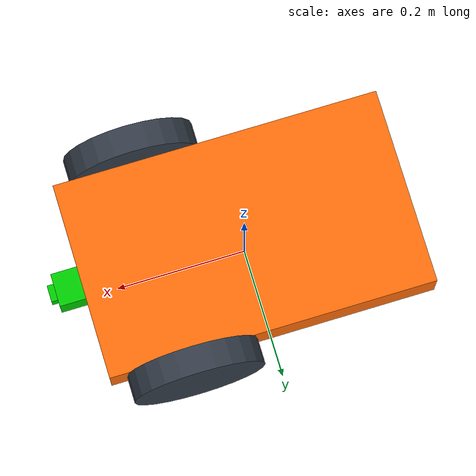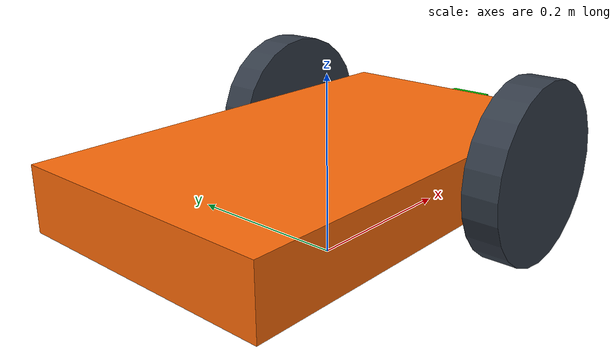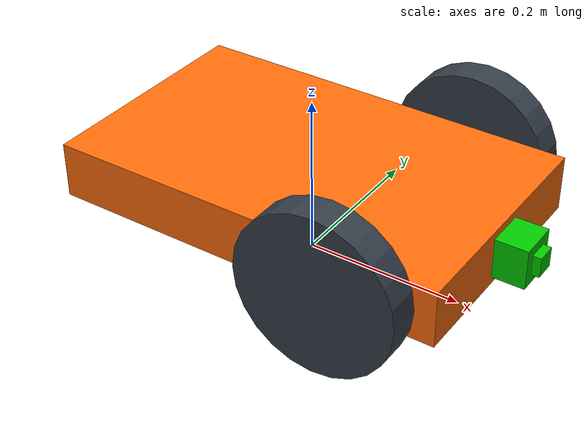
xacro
<?xml version="1.0" ?>

<robot name="robot" xmlns:xacro="http://www.ros.org/wiki/xacro">
  <!-- meta properties -->
  <xacro:property name="package_name" value="robot_description"/>
  <xacro:property name="robot_name" value="simple_robot"/>

  <!-- robot description properties-->
  <xacro:property name="base_length" value="0.5"/>
  <xacro:property name="base_width" value="0.3"/>
  <xacro:property name="base_height" value="0.07"/>

  <xacro:property name="laser_sensor_size" value="0.05"/>

  <xacro:property name="wheel_diam" value="0.2"/>
  <xacro:property name="wheel_width" value="0.04"/>

  <xacro:property name="collision_inflation" value="1.1"/>

  <!-- includes -->
  <xacro:include filename="$(find ${package_name})/urdf/${robot_name}.gazebo"/>
  <xacro:include filename="$(find ${package_name})/urdf/include/materials.xacro"/>
  <xacro:include filename="$(find ${package_name})/urdf/include/parts.xacro"/>

  <!-- calculated properties -->
  <xacro:property name="wheel_x_pos" value="${base_length/4}"/>
  <xacro:property name="wheel_y_pos" value="${base_width/2+wheel_width/2}"/>
  <xacro:property name="wheel_z_pos" value="0"/>

  <!-- footprint link -->
  <link name="link_footprint"/>
  <joint name="joint_footprint" type="fixed">
    <origin xyz="0 0 ${wheel_diam/2}"/>
    <parent link="link_footprint"/>
    <child link="link_chassis"/>
  </joint>

  <!-- description -->
  <xacro:base link_name="link_chassis" m="5"
    length="${base_length}" width="${base_width}" height="${base_height}"
    collision_inflation="${collision_inflation}" />

  <xacro:caster prefix="rear" base_link="link_chassis"
    m="0.01" r="${wheel_diam/4}"
    x_pos="${-base_length/4}" y_pos="0" z_pos="${-wheel_diam/4}" />

  <xacro:wheel side="right" base_link="link_chassis"
    m="0.2" r="${wheel_diam/2}" l="${wheel_width}"
    x_pos="${wheel_x_pos}" y_pos="${-wheel_y_pos}" z_pos="${wheel_z_pos}" />

  <xacro:wheel side="left" base_link="link_chassis"
    m="0.2" r="${wheel_diam/2}" l="${wheel_width}"
    x_pos="${wheel_x_pos}" y_pos="${wheel_y_pos}" z_pos="${wheel_z_pos}" />

  <xacro:laser name="laser" base_link="link_chassis" m="1e-5" size="${laser_sensor_size}"
    x_pos="${base_length/2 + laser_sensor_size/2}" y_pos="0" z_pos="0"/>
</robot>

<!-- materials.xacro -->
<robot xmlns:xacro="http://www.ros.org/wiki/xacro">
  <material name="black">
    <color rgba="0.0 0.0 0.0 1.0" />
  </material>
  <material name="blue">
    <color rgba="0.203125 0.23828125 0.28515625 1.0" />
  </material>
  <material name="green">
    <color rgba="0.0 0.8 0.0 1.0" />
  </material>
  <material name="grey">
    <color rgba="0.2 0.2 0.2 1.0" />
  </material>
  <material name="orange">
    <color rgba="1.0 0.423529411765 0.0392156862745 1.0" />
  </material>
  <material name="brown">
    <color rgba="0.870588235294 0.811764705882 0.764705882353 1.0" />
  </material>
  <material name="red">
    <color rgba="0.80078125 0.12890625 0.1328125 1.0" />
  </material>
  <material name="white">
    <color rgba="1.0 1.0 1.0 1.0" />
  </material>
</robot>

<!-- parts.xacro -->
<robot xmlns:xacro="http://www.ros.org/wiki/xacro">

  <xacro:include filename="$(find ${package_name})/urdf/include/inertia.xacro"/>

  <xacro:macro name="wheel" params="side base_link m r l x_pos y_pos z_pos">
    <link name="link_${side}_wheel">

      <visual>
        <origin xyz="0 0 0" rpy="${pi/2} 0 0" />
        <geometry>
          <cylinder radius="${r}" length="${l}" />
        </geometry>
        <material name="blue" />
      </visual>

      <collision>
        <origin xyz="0 0 0" rpy="${pi/2} 0 0" />
        <geometry>
          <cylinder radius="${r}" length="${l}" />
        </geometry>
      </collision>

      <xacro:cylinder_inertia m="${m}" r="${r}" l="${l}" o_xyz="0.0 0.0 0.0" o_rpy="${pi/2} 0.0 0.0" />
    </link>

    <joint name="joint_${side}_wheel" type="continuous">
      <axis xyz="0 1 0" rpy="0 0 0" />
      <parent link="${base_link}" />
      <child link="link_${side}_wheel" />
      <origin xyz="${x_pos} ${y_pos} ${z_pos}" rpy="0 0 0" />
      <limit effort="10000" velocity="1000"/>
      <joint_properties damping="1.0" friction="1.0"/>
    </joint>

    <!-- This block provides the simulator (Gazebo) with information on a few additional
      physical properties. See http://gazebosim.org/tutorials/?tut=ros_urdf for more-->
    <gazebo reference="link_${side}_wheel">
      <mu1 value="200.0" />
      <mu2 value="200.0" />
      <kp value="10000000.0" />
      <kd value="1.0" />
      <material>Gazebo/Blue</material>
    </gazebo>
  </xacro:macro>

  <xacro:macro name="caster" params="prefix base_link m r x_pos y_pos z_pos">
    <link name="link_${prefix}_caster">
      <collision name="link_${prefix}_caster_collision">
        <origin rpy=" 0 0 0" xyz="0 0 0"/>
        <geometry>
          <sphere radius="${r}"/>
        </geometry>
        <surface>
          <friction>
            <ode>
              <mu>0</mu>
              <mu2>0</mu2>
              <slip1>1.0</slip1>
              <slip2>1.0</slip2>
            </ode>
          </friction>
        </surface>
      </collision>

      <visual name="link_${prefix}_caster_visual">
        <origin rpy=" 0 0 0" xyz="0 0 0"/>
        <geometry>
          <sphere radius="${r}"/>
        </geometry>
        <material name="blue"/>
      </visual>

      <xacro:sphere_inertia m="${m}" r="${r}"/>
    </link>

    <joint name="joint_${prefix}_caster" type="fixed">
      <origin rpy="0 0 0" xyz="${x_pos} ${y_pos} ${z_pos}"/>
      <parent link="${base_link}"/>
      <child link="link_${prefix}_caster"/>
    </joint>
  </xacro:macro>

  <xacro:macro name="base" params="link_name m length width height collision_inflation">
    <link name="${link_name}">

      <collision name="${link_name}_collision">
          <geometry>
          <box size="${length*collision_inflation} ${width*collision_inflation} ${height*collision_inflation}"/>
        </geometry>
      </collision>

      <visual name="${link_name}_visual">
        <geometry>
          <box size="${length} ${width} ${height}"/>
        </geometry>
        <material name="orange"/>
      </visual>

      <xacro:box_inertia m="${m}" x="${length}" y="${width}" z="${height}"
        o_xyz="0 0 0" o_rpy="0 0 0"/>
    </link>
  </xacro:macro>

  <xacro:macro name="laser" params="name base_link m size x_pos y_pos z_pos r_rot:=0.0 p_rot:=0.0 y_rot:=0.0">
    <link name="link_${name}">
      <collision>
        <origin xyz="0 0 0" rpy="0 0 0"/>
        <geometry>
          <box size="${size} ${size} ${size}"/>
        </geometry>
      </collision>

      <visual>
        <origin xyz="${-size/10} 0 0" rpy="0 0 0"/>
        <geometry>
          <box size="${size*0.8} ${size} ${size}"/>
        </geometry>
        <material name="green"/>
      </visual>

      <visual>
        <origin xyz="${size*0.25} 0 0" rpy="0 0 0"/>
        <geometry>
          <box size="${size*0.5} ${size*0.5} ${size*0.5}"/>
        </geometry>
        <material name="green"/>
      </visual>

      <xacro:box_inertia m="${m}" x="${size}" y="${size}" z="${size}"/>
    </link>

    <joint name="joint_${name}" type="fixed">
      <axis xyz="0 1 0" />
      <origin xyz="${x_pos} ${y_pos} ${z_pos}" rpy="${r_rot} ${p_rot} ${y_rot}"/>
      <parent link="${base_link}"/>
      <child link="link_${name}"/>
    </joint>
  </xacro:macro>
</robot>

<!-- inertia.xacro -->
<robot xmlns:xacro="http://www.ros.org/wiki/xacro">

  <!-- ======================= Intertial macros ===============================-->
  <xacro:macro name="cylinder_inertia" params="m r l o_xyz:='0.0 0.0 0.0' o_rpy:='0.0 0.0 0.0'">
    <inertial>
      <mass value="${m}" />
      <inertia ixx="${m*(3*r*r+l*l)/12}" ixy="0" ixz="0" iyy="${m*(3*r*r+l*l)/12}" iyz="0" izz="${m*r*r/2}" />
      <origin xyz="${o_xyz}" rpy="${o_rpy}" />
    </inertial>
  </xacro:macro>

  <xacro:macro name="sphere_inertia" params="m r">
    <inertial>
      <mass value="${m}" />
      <inertia ixx="${2.0*m*(r*r)/5.0}" ixy="0.0" ixz="0.0" iyy="${2.0*m*(r*r)/5.0}" iyz="0.0" izz="${2.0*m*(r*r)/5.0}" />
    </inertial>
  </xacro:macro>

  <xacro:macro name="box_inertia" params="m x y z o_xyz:='0.0 0.0 0.0' o_rpy:='0.0 0.0 0.0'">
    <inertial>
      <mass value="${m}" />
      <inertia ixx="${m / 12.0 * (y*y + z*z)}" ixy="0.0" ixz="0.0" iyy="${m / 12.0 * (x*x + z*z)}" iyz="0.0" izz="${m / 12.0 * (x*x + y*y)}" />
      <origin xyz="${o_xyz}" rpy="${o_rpy}" />
    </inertial>
  </xacro:macro>
</robot>
